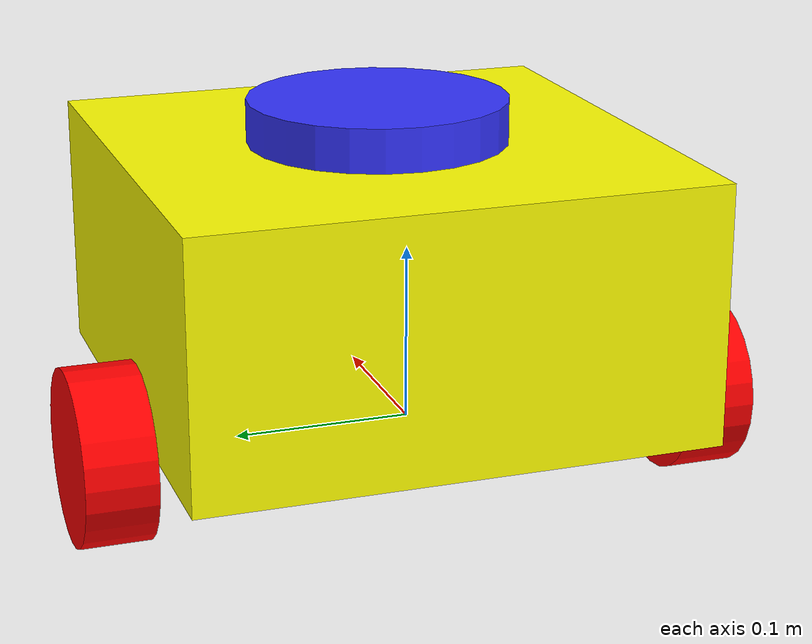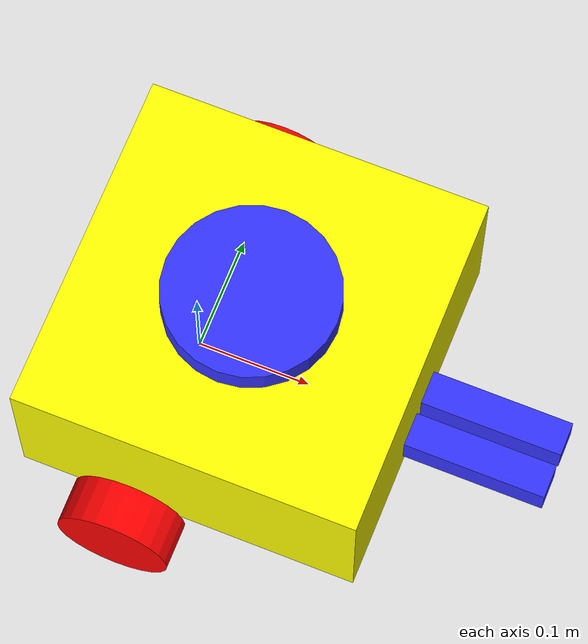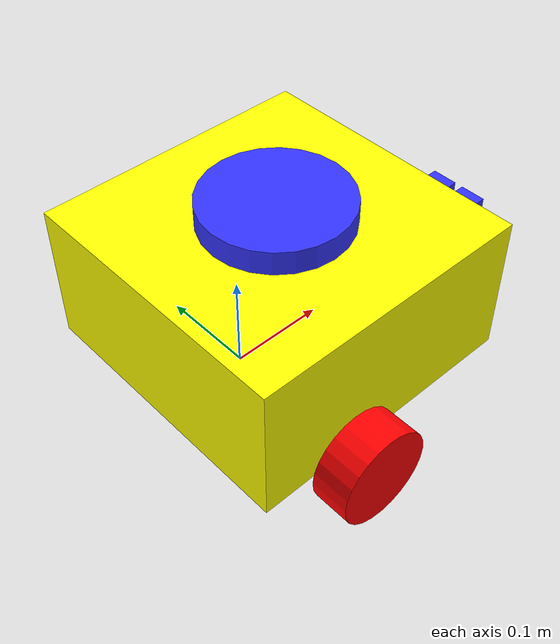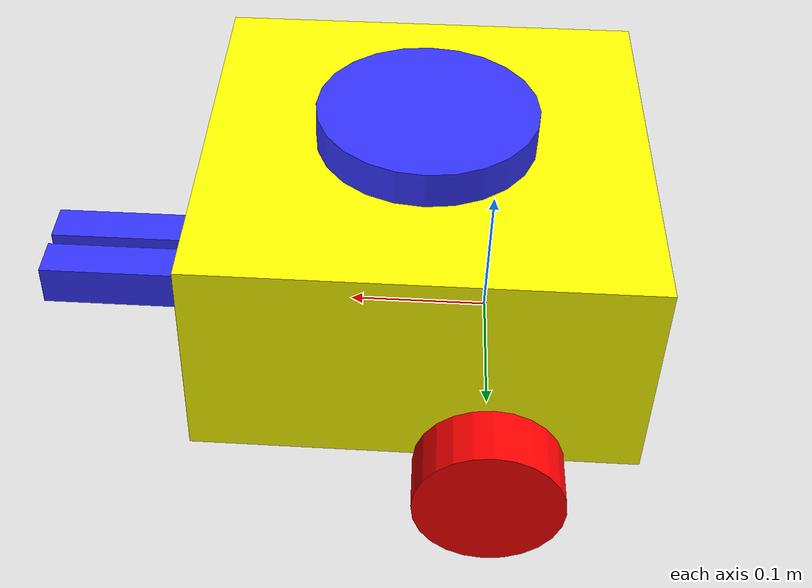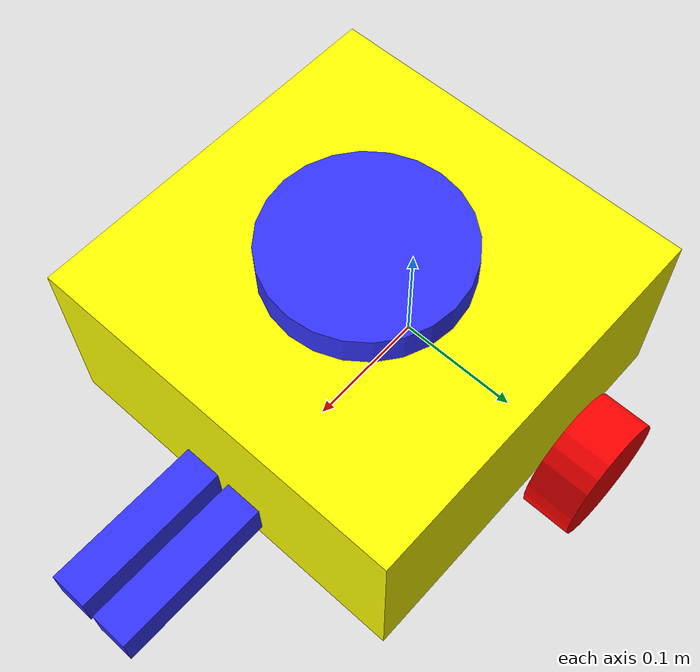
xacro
<?xml version="1.0"?>
<robot xmlns:xacro="http://www.ros.org/wiki/xacro"  name="robot">

    <xacro:include filename="robot_core.xacro" />
    <xacro:include filename="gazebo_control.xacro" />
    <xacro:include filename="lidar.xacro" />
    <xacro:include filename="inertial_macros.xacro" />
    <xacro:include filename="gripper_tr.xacro" />
    <ros2_control name="gripper_robot_gazebo_system" type="system">
        <hardware>
            <plugin>gazebo_ros2_control/GazeboSystem</plugin>
        </hardware>
        <xacro:slider_link1/>
        <xacro:slider_link2/>
    </ros2_control>
    <xacro:robot_controller/>

</robot>

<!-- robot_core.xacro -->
<robot xmlns:xacro="http://www.ros.org/wiki/xacro" >

    <xacro:include filename="inertial_macros.xacro" />

    <material name="white">
        <color rgba="1 1 1 1" />
    </material>

    <material name="orange">
        <color rgba="1 0.3 0.1 1"/>
    </material>

    <material name="blue">
        <color rgba="0.2 0.2 1 1"/>
    </material>

    <material name="black">
        <color rgba="0 0 0 1"/>
    </material>

    <material name="red">
        <color rgba="1 0 0 1"/>
    </material>

    <material name="pink">
            <color rgba="1 0.5 0.5 1"/>
    </material>

    <material name="lightblue">
            <color rgba="0.7 0.7 1 1"/>
    </material>

    <material name="yellow">
            <color rgba="1 1 0 1"/>
    </material>

    <!-- BASE LINK -->

    <link name="base_link">

    </link>

    <joint name="chassis_joint" type="fixed">
        <parent link="base_link"/>
        <child link="chassis"/>
        <origin xyz="-0.1 0 0"/>
    </joint>

    <link name="chassis">
        <visual>
            <origin xyz="0.15 0 0.075" rpy="0 0 0"/>
            <geometry>
                <box size="0.3 0.3 0.15"/>
            </geometry>
            <material name="yellow"/>
        </visual>
        <collision>
            <origin xyz="0.15 0 0.075" rpy="0 0 0"/>
            <geometry>
                <box size="0.3 0.3 0.15"/>
            </geometry>
        </collision>
        <!-- ... visual and collision here ... -->
        <xacro:inertial_box mass="0.5" x="0.3" y="0.3" z="0.15">
            <origin xyz="0.15 0 0.075" rpy="0 0 0"/>
        </xacro:inertial_box>
    </link>

    <gazebo reference="chassis">
        <material>Gazebo/White</material>
     </gazebo>

    <joint name="slider_joint1" type="prismatic">
        <origin xyz="0.25 0.02 0" rpy="0 0 0"/>
        <parent link="base_link"/>
        <child link="slider_link1"/>
        <axis xyz="0 1 0"/>
        <limit lower="0" upper="0.1" velocity="100" effort="100"/>
    </joint>

    <link name="slider_link1">
        <visual>
            <origin xyz="0 0 0.03" rpy="0 0 0"/>
            <geometry>
                <box size="0.15 0.03 0.03" />
            </geometry>
            <material name="blue" />
        </visual>
        <collision>
            <origin xyz="0 0 0.03" rpy="0 0 0"/>
            <geometry>
                <box size="0.15 0.03 0.03" />
            </geometry>
        </collision>
        <xacro:inertial_box mass="0.05" x="0.05" y="0.025" z="0.015">
            <origin xyz="0 0 0.075" rpy="0 0 0"/>
        </xacro:inertial_box>
    </link>

    <joint name="slider_joint2" type="prismatic">
        <origin xyz="0.25 -0.02 0" rpy="0 0 0"/>
        <parent link="base_link"/>
        <child link="slider_link2"/>
        <axis xyz="0 -1 0"/>
        <limit lower="0" upper="0.1" velocity="100" effort="100"/>
    </joint>

    <link name="slider_link2">
        <visual>
            <origin xyz="0 0 0.03" rpy="0 0 0"/>
            <geometry>
                <box size="0.15 0.03 0.03" />
            </geometry>
            <material name="blue" />
        </visual>
        <collision>
            <origin xyz="0 0 0.03" rpy="0 0 0"/>
            <geometry>
                <box size="0.15 0.03 0.03" />
            </geometry>
        </collision>
        <xacro:inertial_box mass="0.05" x="0.05" y="0.025" z="0.015">
            <origin xyz="0 0 0.075" rpy="0 0 0"/>
        </xacro:inertial_box>
    </link>

    <!-- LEFT WHEEL -->

    <joint name="left_wheel_joint" type="continuous">
        <parent link="base_link"/>
        <child link="left_wheel"/>
        <origin xyz="0 0.175 0" rpy="-${pi/2} 0 0"/>
        <axis xyz="0 0 1"/>
    </joint>

    <link name="left_wheel">
        <visual>
            <geometry>
                <cylinder length="0.04" radius="0.05" />
            </geometry>
            <material name="red"/>
        </visual>
        <collision>
            <geometry>
                <cylinder length="0.04" radius="0.05" />
            </geometry>
        </collision>
        <!-- ... visual and collision here ... -->
        <xacro:inertial_cylinder mass="0.1" length="0.05" radius="0.05">
            <origin xyz="0 0 0" rpy="0 0 0"/>
        </xacro:inertial_cylinder>
    </link>

    <!-- RIGHT WHEEL -->

    <joint name="right_wheel_joint" type="continuous">
        <parent link="base_link"/>
        <child link="right_wheel"/>
        <origin xyz="0 -0.175 0" rpy="${pi/2} 0 0"/>
        <axis xyz="0 0 -1"/>
    </joint>

    <link name="right_wheel">
        <visual>
            <geometry>
                <cylinder length="0.04" radius="0.05" />
            </geometry>
            <material name="red"/>
        </visual>
        <collision>
            <geometry>
                <cylinder length="0.04" radius="0.05" />
            </geometry>
        </collision>
        <!-- ... visual and collision here ... -->
        <xacro:inertial_cylinder mass="0.1" length="0.05" radius="0.05">
            <origin xyz="0 0 0" rpy="0 0 0"/>
        </xacro:inertial_cylinder>
    </link>

    <!-- CASTER WHEEL -->

    <joint name="caster_wheel_joint" type="fixed">
        <parent link="chassis"/>
        <child link="caster_wheel"/>
        <origin xyz="0.24 0 0" rpy="0 0 0"/>
    </joint>

    <link name="caster_wheel">
        <visual>
            <geometry>
                <sphere radius="0.05" />
            </geometry>
            <material name="orange"/>
        </visual>
        <collision>
            <geometry>
                <sphere radius="0.05" />
            </geometry>
        </collision>
        <!-- ... visual and collision here ... -->
        <xacro:inertial_sphere mass="0.1" radius="0.05">
            <origin xyz="0 0 0" rpy="0 0 0"/>
        </xacro:inertial_sphere>
    </link>

    <gazebo reference="caster_wheel">
        <material>Gazebo/Black</material>
        <mu1 value="0.001"/>
        <mu2 value="0.001"/>
    </gazebo>

</robot>

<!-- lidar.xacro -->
<robot xmlns:xacro="http://www.ros.org/wiki/xacro" >

    <joint name="laser_joint" type="fixed">
        <parent link="chassis"/>
        <child link="laser_frame"/>
        <origin xyz="0.15 0 0.15" rpy="0 0 0"/>
    </joint>

    <link name="laser_frame">
        <visual>
            <geometry>
                <cylinder radius="0.075" length="0.05"/>
            </geometry>
            <material name="blue"/>
        </visual>
        <collision>
            <geometry>
                <cylinder radius="0.015" length="0.10"/>
            </geometry>
        </collision>
        <xacro:inertial_cylinder mass="0.1" length="0.10" radius="0.015">
            <origin xyz="0 0 0" rpy="0 0 0"/>
        </xacro:inertial_cylinder>
    </link>

    <gazebo reference="laser_frame">
        <material>Gazebo/Red</material>

        <sensor name="laser" type="ray">
            <pose> 0 0 0 0 0 0 </pose>
            <visualize>true</visualize>
            <update_rate>10</update_rate>
            <ray>
                <scan>
                    <horizontal>
                        <samples>360</samples>
                        <min_angle> -3.14 </min_angle>
                        <max_angle>3.14</max_angle>
                    </horizontal>
                </scan>
                <range>
                    <min>0.3</min>
                    <max>12</max>
                </range>
            </ray>

            <plugin name="laser_controller" filename="libgazebo_ros_ray_sensor.so">
                <ros>
                    <argument>~/out:=scan</argument>
                </ros>
                <output_type>sensor_msgs/LaserScan</output_type>
                <frame_name>laser_frame</frame_name>
            </plugin>
        </sensor>
    </gazebo>

</robot>
